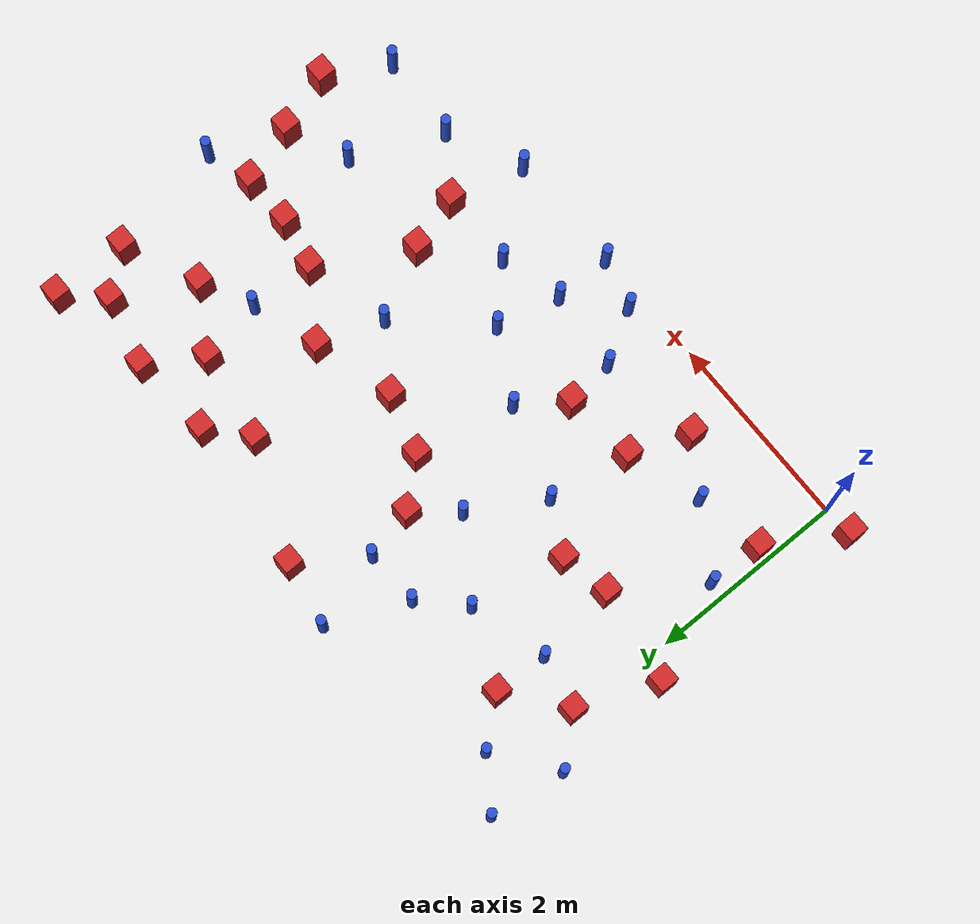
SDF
<sdf version="1.6">
 <model name="dense_11">
  <model name="square_post_obstacle0">
   <static>true</static>
   <pose>1.59521154931 1.13567530019 8.22691968438e-08 7.2212513382e-06 -7.54495500217e-07 2.29674213826e-05</pose>
   <link name="link">
    <pose>0 0 0.25 0 -0 0</pose>
    <inertial>
     <mass>100</mass>
     <inertia>
      <ixx>0.166667</ixx>
      <ixy>0</ixy>
      <ixz>0</ixz>
      <iyy>0.166667</iyy>
      <iyz>0</iyz>
      <izz>0.166667</izz>
     </inertia>
    </inertial>
    <collision name="collision"><geometry><box><size>.2 .2 .5</size></box></geometry></collision>
    <visual name="visual">
     <geometry><box><size>.2 .2 .5</size></box></geometry>
     <material>
      <script><name>Gazebo/Red</name><uri>file://media/materials/scripts/gazebo.material</uri></script>
     </material>
    </visual>
   </link>
  </model>
  <model name="pole_obstacle0">
   <static>true</static>
   <pose>2.64898419732 1.66031176856 2.88873142074e-08 -9.90536689395e-09 4.60219949e-07 -1.20965994953e-07</pose>
   <link name="link">
    <pose>0 0 0.3 0 -0 0</pose>
    <inertial>
     <mass>1</mass>
     <inertia><ixx>0.145833</ixx><ixy>0</ixy><ixz>0</ixz><iyy>0.145833</iyy><iyz>0</iyz><izz>0.125</izz></inertia>
    </inertial>
    <collision name="collision">
     <geometry><cylinder><radius>0.05</radius><length>.6</length></cylinder></geometry>
    </collision>
    <visual name="visual">
     <geometry><cylinder><radius>0.05</radius><length>.6</length></cylinder></geometry>
     <material>
      <script><name>Gazebo/Blue</name><uri>file://media/materials/scripts/gazebo.material</uri></script>
     </material>
    </visual>
   </link>
  </model>
  <model name="square_post_obstacle2">
   <static>true</static>
   <pose>5.42452816976 2.19569135165 8.22691968438e-08 7.2212513382e-06 -7.54495500217e-07 2.29674213826e-05</pose>
   <link name="link">
    <pose>0 0 0.25 0 -0 0</pose>
    <inertial>
     <mass>100</mass>
     <inertia>
      <ixx>0.166667</ixx>
      <ixy>0</ixy>
      <ixz>0</ixz>
      <iyy>0.166667</iyy>
      <iyz>0</iyz>
      <izz>0.166667</izz>
     </inertia>
    </inertial>
    <collision name="collision"><geometry><box><size>.2 .2 .5</size></box></geometry></collision>
    <visual name="visual">
     <geometry><box><size>.2 .2 .5</size></box></geometry>
     <material>
      <script><name>Gazebo/Red</name><uri>file://media/materials/scripts/gazebo.material</uri></script>
     </material>
    </visual>
   </link>
  </model>
  <model name="square_post_obstacle6">
   <static>true</static>
   <pose>2.86335821314 2.66554241512 8.22691968438e-08 7.2212513382e-06 -7.54495500217e-07 2.29674213826e-05</pose>
   <link name="link">
    <pose>0 0 0.25 0 -0 0</pose>
    <inertial>
     <mass>100</mass>
     <inertia>
      <ixx>0.166667</ixx>
      <ixy>0</ixy>
      <ixz>0</ixz>
      <iyy>0.166667</iyy>
      <iyz>0</iyz>
      <izz>0.166667</izz>
     </inertia>
    </inertial>
    <collision name="collision"><geometry><box><size>.2 .2 .5</size></box></geometry></collision>
    <visual name="visual">
     <geometry><box><size>.2 .2 .5</size></box></geometry>
     <material>
      <script><name>Gazebo/Red</name><uri>file://media/materials/scripts/gazebo.material</uri></script>
     </material>
    </visual>
   </link>
  </model>
  <model name="square_post_obstacle7">
   <static>true</static>
   <pose>2.49568992455 3.08654107058 8.22691968438e-08 7.2212513382e-06 -7.54495500217e-07 2.29674213826e-05</pose>
   <link name="link">
    <pose>0 0 0.25 0 -0 0</pose>
    <inertial>
     <mass>100</mass>
     <inertia>
      <ixx>0.166667</ixx>
      <ixy>0</ixy>
      <ixz>0</ixz>
      <iyy>0.166667</iyy>
      <iyz>0</iyz>
      <izz>0.166667</izz>
     </inertia>
    </inertial>
    <collision name="collision"><geometry><box><size>.2 .2 .5</size></box></geometry></collision>
    <visual name="visual">
     <geometry><box><size>.2 .2 .5</size></box></geometry>
     <material>
      <script><name>Gazebo/Red</name><uri>file://media/materials/scripts/gazebo.material</uri></script>
     </material>
    </visual>
   </link>
  </model>
  <model name="square_post_obstacle24">
   <static>true</static>
   <pose>6.13321026635 1.60436506008 8.22691968438e-08 7.2212513382e-06 -7.54495500217e-07 2.29674213826e-05</pose>
   <link name="link">
    <pose>0 0 0.25 0 -0 0</pose>
    <inertial>
     <mass>100</mass>
     <inertia>
      <ixx>0.166667</ixx>
      <ixy>0</ixy>
      <ixz>0</ixz>
      <iyy>0.166667</iyy>
      <iyz>0</iyz>
      <izz>0.166667</izz>
     </inertia>
    </inertial>
    <collision name="collision"><geometry><box><size>.2 .2 .5</size></box></geometry></collision>
    <visual name="visual">
     <geometry><box><size>.2 .2 .5</size></box></geometry>
     <material>
      <script><name>Gazebo/Red</name><uri>file://media/materials/scripts/gazebo.material</uri></script>
     </material>
    </visual>
   </link>
  </model>
  <model name="pole_obstacle26">
   <static>true</static>
   <pose>2.16247874129 4.37946165837 2.88873142074e-08 -9.90536689859e-09 4.60219948989e-07 -1.20965994961e-07</pose>
   <link name="link">
    <pose>0 0 0.3 0 -0 0</pose>
    <inertial>
     <mass>1</mass>
     <inertia><ixx>0.145833</ixx><ixy>0</ixy><ixz>0</ixz><iyy>0.145833</iyy><iyz>0</iyz><izz>0.125</izz></inertia>
    </inertial>
    <collision name="collision">
     <geometry><cylinder><radius>0.05</radius><length>.6</length></cylinder></geometry>
    </collision>
    <visual name="visual">
     <geometry><cylinder><radius>0.05</radius><length>.6</length></cylinder></geometry>
     <material>
      <script><name>Gazebo/Blue</name><uri>file://media/materials/scripts/gazebo.material</uri></script>
     </material>
    </visual>
   </link>
  </model>
  <model name="pole_obstacle28">
   <static>true</static>
   <pose>-0.315152154569 3.51777317175 2.88873142074e-08 -9.90536689663e-09 4.60219948993e-07 -1.20965994959e-07</pose>
   <link name="link">
    <pose>0 0 0.3 0 -0 0</pose>
    <inertial>
     <mass>1</mass>
     <inertia><ixx>0.145833</ixx><ixy>0</ixy><ixz>0</ixz><iyy>0.145833</iyy><iyz>0</iyz><izz>0.125</izz></inertia>
    </inertial>
    <collision name="collision">
     <geometry><cylinder><radius>0.05</radius><length>.6</length></cylinder></geometry>
    </collision>
    <visual name="visual">
     <geometry><cylinder><radius>0.05</radius><length>.6</length></cylinder></geometry>
     <material>
      <script><name>Gazebo/Blue</name><uri>file://media/materials/scripts/gazebo.material</uri></script>
     </material>
    </visual>
   </link>
  </model>
  <model name="pole_obstacle31">
   <static>true</static>
   <pose>4.07089895354 2.06847113455 2.88873142074e-08 -9.90536690245e-09 4.6021994898e-07 -1.20965994966e-07</pose>
   <link name="link">
    <pose>0 0 0.3 0 -0 0</pose>
    <inertial>
     <mass>1</mass>
     <inertia><ixx>0.145833</ixx><ixy>0</ixy><ixz>0</ixz><iyy>0.145833</iyy><iyz>0</iyz><izz>0.125</izz></inertia>
    </inertial>
    <collision name="collision">
     <geometry><cylinder><radius>0.05</radius><length>.6</length></cylinder></geometry>
    </collision>
    <visual name="visual">
     <geometry><cylinder><radius>0.05</radius><length>.6</length></cylinder></geometry>
     <material>
      <script><name>Gazebo/Blue</name><uri>file://media/materials/scripts/gazebo.material</uri></script>
     </material>
    </visual>
   </link>
  </model>
  <model name="square_post_obstacle40">
   <static>true</static>
   <pose>5.19070985868 4.13557711693 8.22691968438e-08 7.2212513382e-06 -7.54495500217e-07 2.29674213826e-05</pose>
   <link name="link">
    <pose>0 0 0.25 0 -0 0</pose>
    <inertial>
     <mass>100</mass>
     <inertia>
      <ixx>0.166667</ixx>
      <ixy>0</ixy>
      <ixz>0</ixz>
      <iyy>0.166667</iyy>
      <iyz>0</iyz>
      <izz>0.166667</izz>
     </inertia>
    </inertial>
    <collision name="collision"><geometry><box><size>.2 .2 .5</size></box></geometry></collision>
    <visual name="visual">
     <geometry><box><size>.2 .2 .5</size></box></geometry>
     <material>
      <script><name>Gazebo/Red</name><uri>file://media/materials/scripts/gazebo.material</uri></script>
     </material>
    </visual>
   </link>
  </model>
  <model name="pole_obstacle44">
   <static>true</static>
   <pose>4.96932050137 2.94581779017 2.88873142074e-08 -9.90536690245e-09 4.6021994898e-07 -1.20965994966e-07</pose>
   <link name="link">
    <pose>0 0 0.3 0 -0 0</pose>
    <inertial>
     <mass>1</mass>
     <inertia><ixx>0.145833</ixx><ixy>0</ixy><ixz>0</ixz><iyy>0.145833</iyy><iyz>0</iyz><izz>0.125</izz></inertia>
    </inertial>
    <collision name="collision">
     <geometry><cylinder><radius>0.05</radius><length>.6</length></cylinder></geometry>
    </collision>
    <visual name="visual">
     <geometry><cylinder><radius>0.05</radius><length>.6</length></cylinder></geometry>
     <material>
      <script><name>Gazebo/Blue</name><uri>file://media/materials/scripts/gazebo.material</uri></script>
     </material>
    </visual>
   </link>
  </model>
  <model name="square_post_obstacle45">
   <static>true</static>
   <pose>2.81397346772 4.24776131736 8.22691968438e-08 7.2212513382e-06 -7.54495500217e-07 2.29674213826e-05</pose>
   <link name="link">
    <pose>0 0 0.25 0 -0 0</pose>
    <inertial>
     <mass>100</mass>
     <inertia>
      <ixx>0.166667</ixx>
      <ixy>0</ixy>
      <ixz>0</ixz>
      <iyy>0.166667</iyy>
      <iyz>0</iyz>
      <izz>0.166667</izz>
     </inertia>
    </inertial>
    <collision name="collision"><geometry><box><size>.2 .2 .5</size></box></geometry></collision>
    <visual name="visual">
     <geometry><box><size>.2 .2 .5</size></box></geometry>
     <material>
      <script><name>Gazebo/Red</name><uri>file://media/materials/scripts/gazebo.material</uri></script>
     </material>
    </visual>
   </link>
  </model>
  <model name="pole_obstacle48">
   <static>true</static>
   <pose>0.15925261882 1.30746685818 2.88873142074e-08 -9.90536689569e-09 4.60219948996e-07 -1.20965994956e-07</pose>
   <link name="link">
    <pose>0 0 0.3 0 -0 0</pose>
    <inertial>
     <mass>1</mass>
     <inertia><ixx>0.145833</ixx><ixy>0</ixy><ixz>0</ixz><iyy>0.145833</iyy><iyz>0</iyz><izz>0.125</izz></inertia>
    </inertial>
    <collision name="collision">
     <geometry><cylinder><radius>0.05</radius><length>.6</length></cylinder></geometry>
    </collision>
    <visual name="visual">
     <geometry><cylinder><radius>0.05</radius><length>.6</length></cylinder></geometry>
     <material>
      <script><name>Gazebo/Blue</name><uri>file://media/materials/scripts/gazebo.material</uri></script>
     </material>
    </visual>
   </link>
  </model>
  <model name="square_post_obstacle50">
   <static>true</static>
   <pose>-0.248405232852 2.27556034725 8.22691968438e-08 7.2212513382e-06 -7.54495500217e-07 2.29674213826e-05</pose>
   <link name="link">
    <pose>0 0 0.25 0 -0 0</pose>
    <inertial>
     <mass>100</mass>
     <inertia>
      <ixx>0.166667</ixx>
      <ixy>0</ixy>
      <ixz>0</ixz>
      <iyy>0.166667</iyy>
      <iyz>0</iyz>
      <izz>0.166667</izz>
     </inertia>
    </inertial>
    <collision name="collision"><geometry><box><size>.2 .2 .5</size></box></geometry></collision>
    <visual name="visual">
     <geometry><box><size>.2 .2 .5</size></box></geometry>
     <material>
      <script><name>Gazebo/Red</name><uri>file://media/materials/scripts/gazebo.material</uri></script>
     </material>
    </visual>
   </link>
  </model>
  <model name="square_post_obstacle55">
   <static>true</static>
   <pose>0.652797261702 3.51908316787 8.22691968438e-08 7.2212513382e-06 -7.54495500217e-07 2.29674213826e-05</pose>
   <link name="link">
    <pose>0 0 0.25 0 -0 0</pose>
    <inertial>
     <mass>100</mass>
     <inertia>
      <ixx>0.166667</ixx>
      <ixy>0</ixy>
      <ixz>0</ixz>
      <iyy>0.166667</iyy>
      <iyz>0</iyz>
      <izz>0.166667</izz>
     </inertia>
    </inertial>
    <collision name="collision"><geometry><box><size>.2 .2 .5</size></box></geometry></collision>
    <visual name="visual">
     <geometry><box><size>.2 .2 .5</size></box></geometry>
     <material>
      <script><name>Gazebo/Red</name><uri>file://media/materials/scripts/gazebo.material</uri></script>
     </material>
    </visual>
   </link>
  </model>
  <model name="pole_obstacle52">
   <static>true</static>
   <pose>5.13855170718 0.432871785088 2.88873142074e-08 -9.90536689981e-09 4.60219948986e-07 -1.20965994962e-07</pose>
   <link name="link">
    <pose>0 0 0.3 0 -0 0</pose>
    <inertial>
     <mass>1</mass>
     <inertia><ixx>0.145833</ixx><ixy>0</ixy><ixz>0</ixz><iyy>0.145833</iyy><iyz>0</iyz><izz>0.125</izz></inertia>
    </inertial>
    <collision name="collision">
     <geometry><cylinder><radius>0.05</radius><length>.6</length></cylinder></geometry>
    </collision>
    <visual name="visual">
     <geometry><cylinder><radius>0.05</radius><length>.6</length></cylinder></geometry>
     <material>
      <script><name>Gazebo/Blue</name><uri>file://media/materials/scripts/gazebo.material</uri></script>
     </material>
    </visual>
   </link>
  </model>
  <model name="pole_obstacle55">
   <static>true</static>
   <pose>3.18216989485 0.0603079932442 2.88873142074e-08 -9.905366921e-09 4.60219948936e-07 -1.20965994985e-07</pose>
   <link name="link">
    <pose>0 0 0.3 0 -0 0</pose>
    <inertial>
     <mass>1</mass>
     <inertia><ixx>0.145833</ixx><ixy>0</ixy><ixz>0</ixz><iyy>0.145833</iyy><iyz>0</iyz><izz>0.125</izz></inertia>
    </inertial>
    <collision name="collision">
     <geometry><cylinder><radius>0.05</radius><length>.6</length></cylinder></geometry>
    </collision>
    <visual name="visual">
     <geometry><cylinder><radius>0.05</radius><length>.6</length></cylinder></geometry>
     <material>
      <script><name>Gazebo/Blue</name><uri>file://media/materials/scripts/gazebo.material</uri></script>
     </material>
    </visual>
   </link>
  </model>
  <model name="pole_obstacle67">
   <static>true</static>
   <pose>4.3924977545 0.0814848977877 2.88873142074e-08 -9.90536689727e-09 4.60219948992e-07 -1.20965994958e-07</pose>
   <link name="link">
    <pose>0 0 0.3 0 -0 0</pose>
    <inertial>
     <mass>1</mass>
     <inertia><ixx>0.145833</ixx><ixy>0</ixy><ixz>0</ixz><iyy>0.145833</iyy><iyz>0</iyz><izz>0.125</izz></inertia>
    </inertial>
    <collision name="collision">
     <geometry><cylinder><radius>0.05</radius><length>.6</length></cylinder></geometry>
    </collision>
    <visual name="visual">
     <geometry><cylinder><radius>0.05</radius><length>.6</length></cylinder></geometry>
     <material>
      <script><name>Gazebo/Blue</name><uri>file://media/materials/scripts/gazebo.material</uri></script>
     </material>
    </visual>
   </link>
  </model>
  <model name="square_post_obstacle74">
   <static>true</static>
   <pose>3.461943655 2.49100299854 8.22691968438e-08 7.2212513382e-06 -7.54495500217e-07 2.29674213826e-05</pose>
   <link name="link">
    <pose>0 0 0.25 0 -0 0</pose>
    <inertial>
     <mass>100</mass>
     <inertia>
      <ixx>0.166667</ixx>
      <ixy>0</ixy>
      <ixz>0</ixz>
      <iyy>0.166667</iyy>
      <iyz>0</iyz>
      <izz>0.166667</izz>
     </inertia>
    </inertial>
    <collision name="collision"><geometry><box><size>.2 .2 .5</size></box></geometry></collision>
    <visual name="visual">
     <geometry><box><size>.2 .2 .5</size></box></geometry>
     <material>
      <script><name>Gazebo/Red</name><uri>file://media/materials/scripts/gazebo.material</uri></script>
     </material>
    </visual>
   </link>
  </model>
  <model name="pole_obstacle69">
   <static>true</static>
   <pose>5.5354633923 1.32193531988 2.88873142074e-08 -9.90536689445e-09 4.60219948999e-07 -1.20965994956e-07</pose>
   <link name="link">
    <pose>0 0 0.3 0 -0 0</pose>
    <inertial>
     <mass>1</mass>
     <inertia><ixx>0.145833</ixx><ixy>0</ixy><ixz>0</ixz><iyy>0.145833</iyy><iyz>0</iyz><izz>0.125</izz></inertia>
    </inertial>
    <collision name="collision">
     <geometry><cylinder><radius>0.05</radius><length>.6</length></cylinder></geometry>
    </collision>
    <visual name="visual">
     <geometry><cylinder><radius>0.05</radius><length>.6</length></cylinder></geometry>
     <material>
      <script><name>Gazebo/Blue</name><uri>file://media/materials/scripts/gazebo.material</uri></script>
     </material>
    </visual>
   </link>
  </model>
  <model name="pole_obstacle79">
   <static>true</static>
   <pose>1.41441816748 3.18993395315 2.88873142074e-08 -9.90536689791e-09 4.6021994899e-07 -1.20965994959e-07</pose>
   <link name="link">
    <pose>0 0 0.3 0 -0 0</pose>
    <inertial>
     <mass>1</mass>
     <inertia><ixx>0.145833</ixx><ixy>0</ixy><ixz>0</ixz><iyy>0.145833</iyy><iyz>0</iyz><izz>0.125</izz></inertia>
    </inertial>
    <collision name="collision">
     <geometry><cylinder><radius>0.05</radius><length>.6</length></cylinder></geometry>
    </collision>
    <visual name="visual">
     <geometry><cylinder><radius>0.05</radius><length>.6</length></cylinder></geometry>
     <material>
      <script><name>Gazebo/Blue</name><uri>file://media/materials/scripts/gazebo.material</uri></script>
     </material>
    </visual>
   </link>
  </model>
  <model name="pole_obstacle89">
   <static>true</static>
   <pose>-0.201768765496 4.29353680427 2.88873142074e-08 -9.90536689703e-09 4.60219948992e-07 -1.20965994959e-07</pose>
   <link name="link">
    <pose>0 0 0.3 0 -0 0</pose>
    <inertial>
     <mass>1</mass>
     <inertia><ixx>0.145833</ixx><ixy>0</ixy><ixz>0</ixz><iyy>0.145833</iyy><iyz>0</iyz><izz>0.125</izz></inertia>
    </inertial>
    <collision name="collision">
     <geometry><cylinder><radius>0.05</radius><length>.6</length></cylinder></geometry>
    </collision>
    <visual name="visual">
     <geometry><cylinder><radius>0.05</radius><length>.6</length></cylinder></geometry>
     <material>
      <script><name>Gazebo/Blue</name><uri>file://media/materials/scripts/gazebo.material</uri></script>
     </material>
    </visual>
   </link>
  </model>
  <model name="pole_obstacle93">
   <static>true</static>
   <pose>3.33888164342 1.28178777815 2.88873142074e-08 -9.90536689395e-09 4.60219949e-07 -1.20965994953e-07</pose>
   <link name="link">
    <pose>0 0 0.3 0 -0 0</pose>
    <inertial>
     <mass>1</mass>
     <inertia><ixx>0.145833</ixx><ixy>0</ixy><ixz>0</ixz><iyy>0.145833</iyy><iyz>0</iyz><izz>0.125</izz></inertia>
    </inertial>
    <collision name="collision">
     <geometry><cylinder><radius>0.05</radius><length>.6</length></cylinder></geometry>
    </collision>
    <visual name="visual">
     <geometry><cylinder><radius>0.05</radius><length>.6</length></cylinder></geometry>
     <material>
      <script><name>Gazebo/Blue</name><uri>file://media/materials/scripts/gazebo.material</uri></script>
     </material>
    </visual>
   </link>
  </model>
  <model name="pole_obstacle95">
   <static>true</static>
   <pose>2.3795772232 0.70945702516 2.88873142074e-08 -9.90536689285e-09 4.60219949002e-07 -1.20965994953e-07</pose>
   <link name="link">
    <pose>0 0 0.3 0 -0 0</pose>
    <inertial>
     <mass>1</mass>
     <inertia><ixx>0.145833</ixx><ixy>0</ixy><ixz>0</ixz><iyy>0.145833</iyy><iyz>0</iyz><izz>0.125</izz></inertia>
    </inertial>
    <collision name="collision">
     <geometry><cylinder><radius>0.05</radius><length>.6</length></cylinder></geometry>
    </collision>
    <visual name="visual">
     <geometry><cylinder><radius>0.05</radius><length>.6</length></cylinder></geometry>
     <material>
      <script><name>Gazebo/Blue</name><uri>file://media/materials/scripts/gazebo.material</uri></script>
     </material>
    </visual>
   </link>
  </model>
  <model name="square_post_obstacle97">
   <static>true</static>
   <pose>0.143785597309 0.755584340554 8.22691968438e-08 7.22125133819e-06 -7.54495500217e-07 2.29674213826e-05</pose>
   <link name="link">
    <pose>0 0 0.25 0 -0 0</pose>
    <inertial>
     <mass>100</mass>
     <inertia>
      <ixx>0.166667</ixx>
      <ixy>0</ixy>
      <ixz>0</ixz>
      <iyy>0.166667</iyy>
      <iyz>0</iyz>
      <izz>0.166667</izz>
     </inertia>
    </inertial>
    <collision name="collision"><geometry><box><size>.2 .2 .5</size></box></geometry></collision>
    <visual name="visual">
     <geometry><box><size>.2 .2 .5</size></box></geometry>
     <material>
      <script><name>Gazebo/Red</name><uri>file://media/materials/scripts/gazebo.material</uri></script>
     </material>
    </visual>
   </link>
  </model>
  <model name="square_post_obstacle100">
   <static>true</static>
   <pose>5.87621217486 3.95748839276 8.22691968438e-08 7.2212513382e-06 -7.54495500217e-07 2.29674213826e-05</pose>
   <link name="link">
    <pose>0 0 0.25 0 -0 0</pose>
    <inertial>
     <mass>100</mass>
     <inertia>
      <ixx>0.166667</ixx>
      <ixy>0</ixy>
      <ixz>0</ixz>
      <iyy>0.166667</iyy>
      <iyz>0</iyz>
      <izz>0.166667</izz>
     </inertia>
    </inertial>
    <collision name="collision"><geometry><box><size>.2 .2 .5</size></box></geometry></collision>
    <visual name="visual">
     <geometry><box><size>.2 .2 .5</size></box></geometry>
     <material>
      <script><name>Gazebo/Red</name><uri>file://media/materials/scripts/gazebo.material</uri></script>
     </material>
    </visual>
   </link>
  </model>
  <model name="square_post_obstacle103">
   <static>true</static>
   <pose>-0.301342070053 0.00789659479354 8.22691968438e-08 7.2212513382e-06 -7.54495500217e-07 2.29674213826e-05</pose>
   <link name="link">
    <pose>0 0 0.25 0 -0 0</pose>
    <inertial>
     <mass>100</mass>
     <inertia>
      <ixx>0.166667</ixx>
      <ixy>0</ixy>
      <ixz>0</ixz>
      <iyy>0.166667</iyy>
      <iyz>0</iyz>
      <izz>0.166667</izz>
     </inertia>
    </inertial>
    <collision name="collision"><geometry><box><size>.2 .2 .5</size></box></geometry></collision>
    <visual name="visual">
     <geometry><box><size>.2 .2 .5</size></box></geometry>
     <material>
      <script><name>Gazebo/Red</name><uri>file://media/materials/scripts/gazebo.material</uri></script>
     </material>
    </visual>
   </link>
  </model>
  <model name="square_post_obstacle105">
   <static>true</static>
   <pose>3.95324624561 3.74492532458 8.22691968438e-08 7.22125133819e-06 -7.54495500217e-07 2.29674213826e-05</pose>
   <link name="link">
    <pose>0 0 0.25 0 -0 0</pose>
    <inertial>
     <mass>100</mass>
     <inertia>
      <ixx>0.166667</ixx>
      <ixy>0</ixy>
      <ixz>0</ixz>
      <iyy>0.166667</iyy>
      <iyz>0</iyz>
      <izz>0.166667</izz>
     </inertia>
    </inertial>
    <collision name="collision"><geometry><box><size>.2 .2 .5</size></box></geometry></collision>
    <visual name="visual">
     <geometry><box><size>.2 .2 .5</size></box></geometry>
     <material>
      <script><name>Gazebo/Red</name><uri>file://media/materials/scripts/gazebo.material</uri></script>
     </material>
    </visual>
   </link>
  </model>
  <model name="square_post_obstacle111">
   <static>true</static>
   <pose>4.8522514457 3.5968656837 8.22691968438e-08 7.2212513382e-06 -7.54495500217e-07 2.29674213826e-05</pose>
   <link name="link">
    <pose>0 0 0.25 0 -0 0</pose>
    <inertial>
     <mass>100</mass>
     <inertia>
      <ixx>0.166667</ixx>
      <ixy>0</ixy>
      <ixz>0</ixz>
      <iyy>0.166667</iyy>
      <iyz>0</iyz>
      <izz>0.166667</izz>
     </inertia>
    </inertial>
    <collision name="collision"><geometry><box><size>.2 .2 .5</size></box></geometry></collision>
    <visual name="visual">
     <geometry><box><size>.2 .2 .5</size></box></geometry>
     <material>
      <script><name>Gazebo/Red</name><uri>file://media/materials/scripts/gazebo.material</uri></script>
     </material>
    </visual>
   </link>
  </model>
  <model name="pole_obstacle123">
   <static>true</static>
   <pose>6.0009472885 0.389909035583 2.88873142074e-08 -9.90536689981e-09 4.60219948986e-07 -1.20965994962e-07</pose>
   <link name="link">
    <pose>0 0 0.3 0 -0 0</pose>
    <inertial>
     <mass>1</mass>
     <inertia><ixx>0.145833</ixx><ixy>0</ixy><ixz>0</ixz><iyy>0.145833</iyy><iyz>0</iyz><izz>0.125</izz></inertia>
    </inertial>
    <collision name="collision">
     <geometry><cylinder><radius>0.05</radius><length>.6</length></cylinder></geometry>
    </collision>
    <visual name="visual">
     <geometry><cylinder><radius>0.05</radius><length>.6</length></cylinder></geometry>
     <material>
      <script><name>Gazebo/Blue</name><uri>file://media/materials/scripts/gazebo.material</uri></script>
     </material>
    </visual>
   </link>
  </model>
  <model name="pole_obstacle126">
   <static>true</static>
   <pose>3.80904709088 0.821524208412 2.88873142074e-08 -9.90536689285e-09 4.60219949002e-07 -1.20965994953e-07</pose>
   <link name="link">
    <pose>0 0 0.3 0 -0 0</pose>
    <inertial>
     <mass>1</mass>
     <inertia><ixx>0.145833</ixx><ixy>0</ixy><ixz>0</ixz><iyy>0.145833</iyy><iyz>0</iyz><izz>0.125</izz></inertia>
    </inertial>
    <collision name="collision">
     <geometry><cylinder><radius>0.05</radius><length>.6</length></cylinder></geometry>
    </collision>
    <visual name="visual">
     <geometry><cylinder><radius>0.05</radius><length>.6</length></cylinder></geometry>
     <material>
      <script><name>Gazebo/Blue</name><uri>file://media/materials/scripts/gazebo.material</uri></script>
     </material>
    </visual>
   </link>
  </model>
  <model name="square_post_obstacle118">
   <static>true</static>
   <pose>0.0778012920095 3.07816666529 8.22691968438e-08 7.2212513382e-06 -7.54495500217e-07 2.29674213826e-05</pose>
   <link name="link">
    <pose>0 0 0.25 0 -0 0</pose>
    <inertial>
     <mass>100</mass>
     <inertia>
      <ixx>0.166667</ixx>
      <ixy>0</ixy>
      <ixz>0</ixz>
      <iyy>0.166667</iyy>
      <iyz>0</iyz>
      <izz>0.166667</izz>
     </inertia>
    </inertial>
    <collision name="collision"><geometry><box><size>.2 .2 .5</size></box></geometry></collision>
    <visual name="visual">
     <geometry><box><size>.2 .2 .5</size></box></geometry>
     <material>
      <script><name>Gazebo/Red</name><uri>file://media/materials/scripts/gazebo.material</uri></script>
     </material>
    </visual>
   </link>
  </model>
  <model name="square_post_obstacle119">
   <static>true</static>
   <pose>1.36652664695 0.537661795758 8.22691968438e-08 7.22125133819e-06 -7.54495500217e-07 2.29674213826e-05</pose>
   <link name="link">
    <pose>0 0 0.25 0 -0 0</pose>
    <inertial>
     <mass>100</mass>
     <inertia>
      <ixx>0.166667</ixx>
      <ixy>0</ixy>
      <ixz>0</ixz>
      <iyy>0.166667</iyy>
      <iyz>0</iyz>
      <izz>0.166667</izz>
     </inertia>
    </inertial>
    <collision name="collision"><geometry><box><size>.2 .2 .5</size></box></geometry></collision>
    <visual name="visual">
     <geometry><box><size>.2 .2 .5</size></box></geometry>
     <material>
      <script><name>Gazebo/Red</name><uri>file://media/materials/scripts/gazebo.material</uri></script>
     </material>
    </visual>
   </link>
  </model>
  <model name="square_post_obstacle122">
   <static>true</static>
   <pose>4.33973639325 4.07967168282 8.22691968438e-08 7.22125133819e-06 -7.54495500217e-07 2.29674213826e-05</pose>
   <link name="link">
    <pose>0 0 0.25 0 -0 0</pose>
    <inertial>
     <mass>100</mass>
     <inertia>
      <ixx>0.166667</ixx>
      <ixy>0</ixy>
      <ixz>0</ixz>
      <iyy>0.166667</iyy>
      <iyz>0</iyz>
      <izz>0.166667</izz>
     </inertia>
    </inertial>
    <collision name="collision"><geometry><box><size>.2 .2 .5</size></box></geometry></collision>
    <visual name="visual">
     <geometry><box><size>.2 .2 .5</size></box></geometry>
     <material>
      <script><name>Gazebo/Red</name><uri>file://media/materials/scripts/gazebo.material</uri></script>
     </material>
    </visual>
   </link>
  </model>
  <model name="pole_obstacle144">
   <static>true</static>
   <pose>6.43157653221 2.33684050891 2.88873142074e-08 -9.90536690245e-09 4.6021994898e-07 -1.20965994966e-07</pose>
   <link name="link">
    <pose>0 0 0.3 0 -0 0</pose>
    <inertial>
     <mass>1</mass>
     <inertia><ixx>0.145833</ixx><ixy>0</ixy><ixz>0</ixz><iyy>0.145833</iyy><iyz>0</iyz><izz>0.125</izz></inertia>
    </inertial>
    <collision name="collision">
     <geometry><cylinder><radius>0.05</radius><length>.6</length></cylinder></geometry>
    </collision>
    <visual name="visual">
     <geometry><cylinder><radius>0.05</radius><length>.6</length></cylinder></geometry>
     <material>
      <script><name>Gazebo/Blue</name><uri>file://media/materials/scripts/gazebo.material</uri></script>
     </material>
    </visual>
   </link>
  </model>
  <model name="square_post_obstacle137">
   <static>true</static>
   <pose>6.32609797704 1.01060081362 8.22691968438e-08 7.2212513382e-06 -7.54495500217e-07 2.29674213826e-05</pose>
   <link name="link">
    <pose>0 0 0.25 0 -0 0</pose>
    <inertial>
     <mass>100</mass>
     <inertia>
      <ixx>0.166667</ixx>
      <ixy>0</ixy>
      <ixz>0</ixz>
      <iyy>0.166667</iyy>
      <iyz>0</iyz>
      <izz>0.166667</izz>
     </inertia>
    </inertial>
    <collision name="collision"><geometry><box><size>.2 .2 .5</size></box></geometry></collision>
    <visual name="visual">
     <geometry><box><size>.2 .2 .5</size></box></geometry>
     <material>
      <script><name>Gazebo/Red</name><uri>file://media/materials/scripts/gazebo.material</uri></script>
     </material>
    </visual>
   </link>
  </model>
  <model name="square_post_obstacle141">
   <static>true</static>
   <pose>4.91946181122 2.295462702 8.22691968438e-08 7.2212513382e-06 -7.54495500217e-07 2.29674213826e-05</pose>
   <link name="link">
    <pose>0 0 0.25 0 -0 0</pose>
    <inertial>
     <mass>100</mass>
     <inertia>
      <ixx>0.166667</ixx>
      <ixy>0</ixy>
      <ixz>0</ixz>
      <iyy>0.166667</iyy>
      <iyz>0</iyz>
      <izz>0.166667</izz>
     </inertia>
    </inertial>
    <collision name="collision"><geometry><box><size>.2 .2 .5</size></box></geometry></collision>
    <visual name="visual">
     <geometry><box><size>.2 .2 .5</size></box></geometry>
     <material>
      <script><name>Gazebo/Red</name><uri>file://media/materials/scripts/gazebo.material</uri></script>
     </material>
    </visual>
   </link>
  </model>
  <model name="square_post_obstacle143">
   <static>true</static>
   <pose>6.21233833512 3.54451154343 8.22691968438e-08 7.2212513382e-06 -7.54495500217e-07 2.29674213826e-05</pose>
   <link name="link">
    <pose>0 0 0.25 0 -0 0</pose>
    <inertial>
     <mass>100</mass>
     <inertia>
      <ixx>0.166667</ixx>
      <ixy>0</ixy>
      <ixz>0</ixz>
      <iyy>0.166667</iyy>
      <iyz>0</iyz>
      <izz>0.166667</izz>
     </inertia>
    </inertial>
    <collision name="collision"><geometry><box><size>.2 .2 .5</size></box></geometry></collision>
    <visual name="visual">
     <geometry><box><size>.2 .2 .5</size></box></geometry>
     <material>
      <script><name>Gazebo/Red</name><uri>file://media/materials/scripts/gazebo.material</uri></script>
     </material>
    </visual>
   </link>
  </model>
  <model name="square_post_obstacle145">
   <static>true</static>
   <pose>2.32243363316 1.21249501285 8.22691968438e-08 7.2212513382e-06 -7.54495500217e-07 2.29674213826e-05</pose>
   <link name="link">
    <pose>0 0 0.25 0 -0 0</pose>
    <inertial>
     <mass>100</mass>
     <inertia>
      <ixx>0.166667</ixx>
      <ixy>0</ixy>
      <ixz>0</ixz>
      <iyy>0.166667</iyy>
      <iyz>0</iyz>
      <izz>0.166667</izz>
     </inertia>
    </inertial>
    <collision name="collision"><geometry><box><size>.2 .2 .5</size></box></geometry></collision>
    <visual name="visual">
     <geometry><box><size>.2 .2 .5</size></box></geometry>
     <material>
      <script><name>Gazebo/Red</name><uri>file://media/materials/scripts/gazebo.material</uri></script>
     </material>
    </visual>
   </link>
  </model>
  <model name="square_post_obstacle153">
   <static>true</static>
   <pose>4.41264451042 1.38249066521 8.22691968438e-08 7.2212513382e-06 -7.54495500217e-07 2.29674213826e-05</pose>
   <link name="link">
    <pose>0 0 0.25 0 -0 0</pose>
    <inertial>
     <mass>100</mass>
     <inertia>
      <ixx>0.166667</ixx>
      <ixy>0</ixy>
      <ixz>0</ixz>
      <iyy>0.166667</iyy>
      <iyz>0</iyz>
      <izz>0.166667</izz>
     </inertia>
    </inertial>
    <collision name="collision"><geometry><box><size>.2 .2 .5</size></box></geometry></collision>
    <visual name="visual">
     <geometry><box><size>.2 .2 .5</size></box></geometry>
     <material>
      <script><name>Gazebo/Red</name><uri>file://media/materials/scripts/gazebo.material</uri></script>
     </material>
    </visual>
   </link>
  </model>
  <model name="pole_obstacle162">
   <static>true</static>
   <pose>0.624507279996 2.96524750776 2.88873142074e-08 -9.90536689636e-09 4.60219948994e-07 -1.20965994958e-07</pose>
   <link name="link">
    <pose>0 0 0.3 0 -0 0</pose>
    <inertial>
     <mass>1</mass>
     <inertia><ixx>0.145833</ixx><ixy>0</ixy><ixz>0</ixz><iyy>0.145833</iyy><iyz>0</iyz><izz>0.125</izz></inertia>
    </inertial>
    <collision name="collision">
     <geometry><cylinder><radius>0.05</radius><length>.6</length></cylinder></geometry>
    </collision>
    <visual name="visual">
     <geometry><cylinder><radius>0.05</radius><length>.6</length></cylinder></geometry>
     <material>
      <script><name>Gazebo/Blue</name><uri>file://media/materials/scripts/gazebo.material</uri></script>
     </material>
    </visual>
   </link>
  </model>
  <model name="pole_obstacle163">
   <static>true</static>
   <pose>3.18180727874 0.63970030288 2.88873142074e-08 -9.90536689285e-09 4.60219949002e-07 -1.20965994953e-07</pose>
   <link name="link">
    <pose>0 0 0.3 0 -0 0</pose>
    <inertial>
     <mass>1</mass>
     <inertia><ixx>0.145833</ixx><ixy>0</ixy><ixz>0</ixz><iyy>0.145833</iyy><iyz>0</iyz><izz>0.125</izz></inertia>
    </inertial>
    <collision name="collision">
     <geometry><cylinder><radius>0.05</radius><length>.6</length></cylinder></geometry>
    </collision>
    <visual name="visual">
     <geometry><cylinder><radius>0.05</radius><length>.6</length></cylinder></geometry>
     <material>
      <script><name>Gazebo/Blue</name><uri>file://media/materials/scripts/gazebo.material</uri></script>
     </material>
    </visual>
   </link>
  </model>
  <model name="pole_obstacle170">
   <static>true</static>
   <pose>2.37883699331 3.60174892034 2.88873142074e-08 -9.90536690232e-09 4.6021994898e-07 -1.20965994968e-07</pose>
   <link name="link">
    <pose>0 0 0.3 0 -0 0</pose>
    <inertial>
     <mass>1</mass>
     <inertia><ixx>0.145833</ixx><ixy>0</ixy><ixz>0</ixz><iyy>0.145833</iyy><iyz>0</iyz><izz>0.125</izz></inertia>
    </inertial>
    <collision name="collision">
     <geometry><cylinder><radius>0.05</radius><length>.6</length></cylinder></geometry>
    </collision>
    <visual name="visual">
     <geometry><cylinder><radius>0.05</radius><length>.6</length></cylinder></geometry>
     <material>
      <script><name>Gazebo/Blue</name><uri>file://media/materials/scripts/gazebo.material</uri></script>
     </material>
    </visual>
   </link>
  </model>
  <model name="square_post_obstacle162">
   <static>true</static>
   <pose>0.722412587111 2.13188007147 8.22691968438e-08 7.2212513382e-06 -7.54495500217e-07 2.29674213826e-05</pose>
   <link name="link">
    <pose>0 0 0.25 0 -0 0</pose>
    <inertial>
     <mass>100</mass>
     <inertia>
      <ixx>0.166667</ixx>
      <ixy>0</ixy>
      <ixz>0</ixz>
      <iyy>0.166667</iyy>
      <iyz>0</iyz>
      <izz>0.166667</izz>
     </inertia>
    </inertial>
    <collision name="collision"><geometry><box><size>.2 .2 .5</size></box></geometry></collision>
    <visual name="visual">
     <geometry><box><size>.2 .2 .5</size></box></geometry>
     <material>
      <script><name>Gazebo/Red</name><uri>file://media/materials/scripts/gazebo.material</uri></script>
     </material>
    </visual>
   </link>
  </model>
  <model name="square_post_obstacle168">
   <static>true</static>
   <pose>1.22187859291 2.23503872377 8.22691968438e-08 7.2212513382e-06 -7.54495500217e-07 2.29674213826e-05</pose>
   <link name="link">
    <pose>0 0 0.25 0 -0 0</pose>
    <inertial>
     <mass>100</mass>
     <inertia>
      <ixx>0.166667</ixx>
      <ixy>0</ixy>
      <ixz>0</ixz>
      <iyy>0.166667</iyy>
      <iyz>0</iyz>
      <izz>0.166667</izz>
     </inertia>
    </inertial>
    <collision name="collision"><geometry><box><size>.2 .2 .5</size></box></geometry></collision>
    <visual name="visual">
     <geometry><box><size>.2 .2 .5</size></box></geometry>
     <material>
      <script><name>Gazebo/Red</name><uri>file://media/materials/scripts/gazebo.material</uri></script>
     </material>
    </visual>
   </link>
  </model>
  <model name="square_post_obstacle171">
   <static>true</static>
   <pose>4.57852084991 0.831977192021 8.22691968438e-08 7.2212513382e-06 -7.54495500217e-07 2.29674213826e-05</pose>
   <link name="link">
    <pose>0 0 0.25 0 -0 0</pose>
    <inertial>
     <mass>100</mass>
     <inertia>
      <ixx>0.166667</ixx>
      <ixy>0</ixy>
      <ixz>0</ixz>
      <iyy>0.166667</iyy>
      <iyz>0</iyz>
      <izz>0.166667</izz>
     </inertia>
    </inertial>
    <collision name="collision"><geometry><box><size>.2 .2 .5</size></box></geometry></collision>
    <visual name="visual">
     <geometry><box><size>.2 .2 .5</size></box></geometry>
     <material>
      <script><name>Gazebo/Red</name><uri>file://media/materials/scripts/gazebo.material</uri></script>
     </material>
    </visual>
   </link>
  </model>
  <model name="pole_obstacle188">
   <static>true</static>
   <pose>1.73528651805 1.95897012718 2.88873142074e-08 -9.9053668992e-09 4.60219948987e-07 -1.20965994962e-07</pose>
   <link name="link">
    <pose>0 0 0.3 0 -0 0</pose>
    <inertial>
     <mass>1</mass>
     <inertia><ixx>0.145833</ixx><ixy>0</ixy><ixz>0</ixz><iyy>0.145833</iyy><iyz>0</iyz><izz>0.125</izz></inertia>
    </inertial>
    <collision name="collision">
     <geometry><cylinder><radius>0.05</radius><length>.6</length></cylinder></geometry>
    </collision>
    <visual name="visual">
     <geometry><cylinder><radius>0.05</radius><length>.6</length></cylinder></geometry>
     <material>
      <script><name>Gazebo/Blue</name><uri>file://media/materials/scripts/gazebo.material</uri></script>
     </material>
    </visual>
   </link>
  </model>
  <model name="pole_obstacle191">
   <static>true</static>
   <pose>2.15403448343 2.68464568598 2.88873142074e-08 -9.90536690232e-09 4.6021994898e-07 -1.20965994968e-07</pose>
   <link name="link">
    <pose>0 0 0.3 0 -0 0</pose>
    <inertial>
     <mass>1</mass>
     <inertia><ixx>0.145833</ixx><ixy>0</ixy><ixz>0</ixz><iyy>0.145833</iyy><iyz>0</iyz><izz>0.125</izz></inertia>
    </inertial>
    <collision name="collision">
     <geometry><cylinder><radius>0.05</radius><length>.6</length></cylinder></geometry>
    </collision>
    <visual name="visual">
     <geometry><cylinder><radius>0.05</radius><length>.6</length></cylinder></geometry>
     <material>
      <script><name>Gazebo/Blue</name><uri>file://media/materials/scripts/gazebo.material</uri></script>
     </material>
    </visual>
   </link>
  </model>
  <model name="square_post_obstacle186">
   <static>true</static>
   <pose>5.94499727921 2.19768831897 8.22691968438e-08 7.2212513382e-06 -7.54495500217e-07 2.29674213826e-05</pose>
   <link name="link">
    <pose>0 0 0.25 0 -0 0</pose>
    <inertial>
     <mass>100</mass>
     <inertia>
      <ixx>0.166667</ixx>
      <ixy>0</ixy>
      <ixz>0</ixz>
      <iyy>0.166667</iyy>
      <iyz>0</iyz>
      <izz>0.166667</izz>
     </inertia>
    </inertial>
    <collision name="collision"><geometry><box><size>.2 .2 .5</size></box></geometry></collision>
    <visual name="visual">
     <geometry><box><size>.2 .2 .5</size></box></geometry>
     <material>
      <script><name>Gazebo/Red</name><uri>file://media/materials/scripts/gazebo.material</uri></script>
     </material>
    </visual>
   </link>
  </model>
  <model name="square_post_obstacle187">
   <static>true</static>
   <pose>5.45963194454 3.20699398888 8.22691968438e-08 7.2212513382e-06 -7.54495500217e-07 2.29674213826e-05</pose>
   <link name="link">
    <pose>0 0 0.25 0 -0 0</pose>
    <inertial>
     <mass>100</mass>
     <inertia>
      <ixx>0.166667</ixx>
      <ixy>0</ixy>
      <ixz>0</ixz>
      <iyy>0.166667</iyy>
      <iyz>0</iyz>
      <izz>0.166667</izz>
     </inertia>
    </inertial>
    <collision name="collision"><geometry><box><size>.2 .2 .5</size></box></geometry></collision>
    <visual name="visual">
     <geometry><box><size>.2 .2 .5</size></box></geometry>
     <material>
      <script><name>Gazebo/Red</name><uri>file://media/materials/scripts/gazebo.material</uri></script>
     </material>
    </visual>
   </link>
  </model>
  <model name="pole_obstacle207">
   <static>true</static>
   <pose>0.285098429221 3.95313512152 2.88873142074e-08 -9.90536689825e-09 4.6021994899e-07 -1.20965994961e-07</pose>
   <link name="link">
    <pose>0 0 0.3 0 -0 0</pose>
    <inertial>
     <mass>1</mass>
     <inertia><ixx>0.145833</ixx><ixy>0</ixy><ixz>0</ixz><iyy>0.145833</iyy><iyz>0</iyz><izz>0.125</izz></inertia>
    </inertial>
    <collision name="collision">
     <geometry><cylinder><radius>0.05</radius><length>.6</length></cylinder></geometry>
    </collision>
    <visual name="visual">
     <geometry><cylinder><radius>0.05</radius><length>.6</length></cylinder></geometry>
     <material>
      <script><name>Gazebo/Blue</name><uri>file://media/materials/scripts/gazebo.material</uri></script>
     </material>
    </visual>
   </link>
  </model>
  <model name="pole_obstacle212">
   <static>true</static>
   <pose>2.67973200385 0.197890064098 2.88873142074e-08 -9.90536689209e-09 4.60219949004e-07 -1.20965994952e-07</pose>
   <link name="link">
    <pose>0 0 0.3 0 -0 0</pose>
    <inertial>
     <mass>1</mass>
     <inertia><ixx>0.145833</ixx><ixy>0</ixy><ixz>0</ixz><iyy>0.145833</iyy><iyz>0</iyz><izz>0.125</izz></inertia>
    </inertial>
    <collision name="collision">
     <geometry><cylinder><radius>0.05</radius><length>.6</length></cylinder></geometry>
    </collision>
    <visual name="visual">
     <geometry><cylinder><radius>0.05</radius><length>.6</length></cylinder></geometry>
     <material>
      <script><name>Gazebo/Blue</name><uri>file://media/materials/scripts/gazebo.material</uri></script>
     </material>
    </visual>
   </link>
  </model>
  <model name="pole_obstacle219">
   <static>true</static>
   <pose>0.834630067378 0.879420081428 2.88873142074e-08 -9.90536689967e-09 4.60219948986e-07 -1.20965994963e-07</pose>
   <link name="link">
    <pose>0 0 0.3 0 -0 0</pose>
    <inertial>
     <mass>1</mass>
     <inertia><ixx>0.145833</ixx><ixy>0</ixy><ixz>0</ixz><iyy>0.145833</iyy><iyz>0</iyz><izz>0.125</izz></inertia>
    </inertial>
    <collision name="collision">
     <geometry><cylinder><radius>0.05</radius><length>.6</length></cylinder></geometry>
    </collision>
    <visual name="visual">
     <geometry><cylinder><radius>0.05</radius><length>.6</length></cylinder></geometry>
     <material>
      <script><name>Gazebo/Blue</name><uri>file://media/materials/scripts/gazebo.material</uri></script>
     </material>
    </visual>
   </link>
  </model>
  <model name="square_post_obstacle200">
   <static>true</static>
   <pose>6.23295790837 4.32398792737 8.22691968438e-08 7.2212513382e-06 -7.54495500217e-07 2.29674213826e-05</pose>
   <link name="link">
    <pose>0 0 0.25 0 -0 0</pose>
    <inertial>
     <mass>100</mass>
     <inertia>
      <ixx>0.166667</ixx>
      <ixy>0</ixy>
      <ixz>0</ixz>
      <iyy>0.166667</iyy>
      <iyz>0</iyz>
      <izz>0.166667</izz>
     </inertia>
    </inertial>
    <collision name="collision"><geometry><box><size>.2 .2 .5</size></box></geometry></collision>
    <visual name="visual">
     <geometry><box><size>.2 .2 .5</size></box></geometry>
     <material>
      <script><name>Gazebo/Red</name><uri>file://media/materials/scripts/gazebo.material</uri></script>
     </material>
    </visual>
   </link>
  </model>
  <model name="square_post_obstacle214">
   <static>true</static>
   <pose>4.2828495669 2.7265260031 8.22691968438e-08 7.2212513382e-06 -7.54495500217e-07 2.29674213826e-05</pose>
   <link name="link">
    <pose>0 0 0.25 0 -0 0</pose>
    <inertial>
     <mass>100</mass>
     <inertia>
      <ixx>0.166667</ixx>
      <ixy>0</ixy>
      <ixz>0</ixz>
      <iyy>0.166667</iyy>
      <iyz>0</iyz>
      <izz>0.166667</izz>
     </inertia>
    </inertial>
    <collision name="collision"><geometry><box><size>.2 .2 .5</size></box></geometry></collision>
    <visual name="visual">
     <geometry><box><size>.2 .2 .5</size></box></geometry>
     <material>
      <script><name>Gazebo/Red</name><uri>file://media/materials/scripts/gazebo.material</uri></script>
     </material>
    </visual>
   </link>
  </model>
  <model name="pole_obstacle231">
   <static>true</static>
   <pose>1.81536000913 3.58269002041 2.88873142074e-08 -9.90536692039e-09 4.60219948937e-07 -1.20965994983e-07</pose>
   <link name="link">
    <pose>0 0 0.3 0 -0 0</pose>
    <inertial>
     <mass>1</mass>
     <inertia><ixx>0.145833</ixx><ixy>0</ixy><ixz>0</ixz><iyy>0.145833</iyy><iyz>0</iyz><izz>0.125</izz></inertia>
    </inertial>
    <collision name="collision">
     <geometry><cylinder><radius>0.05</radius><length>.6</length></cylinder></geometry>
    </collision>
    <visual name="visual">
     <geometry><cylinder><radius>0.05</radius><length>.6</length></cylinder></geometry>
     <material>
      <script><name>Gazebo/Blue</name><uri>file://media/materials/scripts/gazebo.material</uri></script>
     </material>
    </visual>
   </link>
  </model>
 </model>
</sdf>
